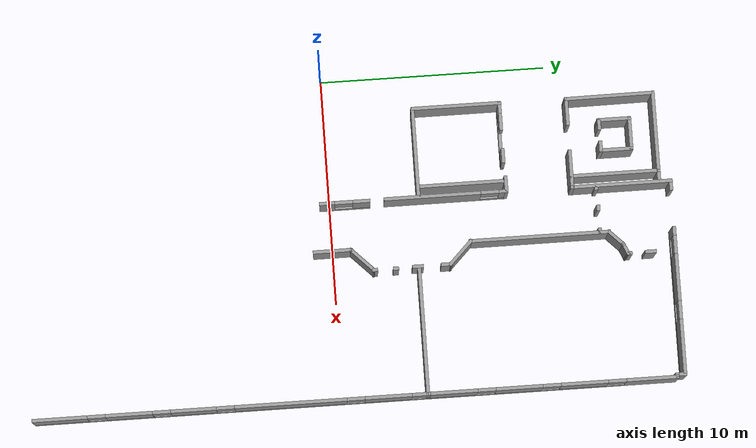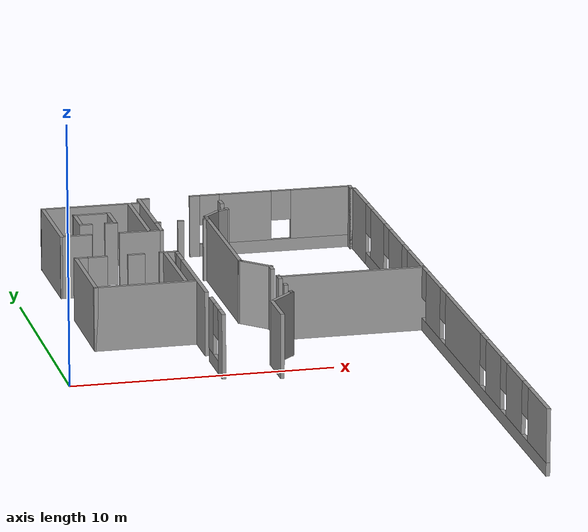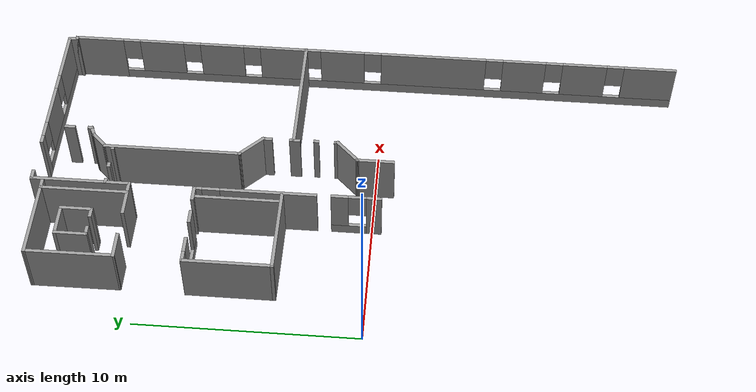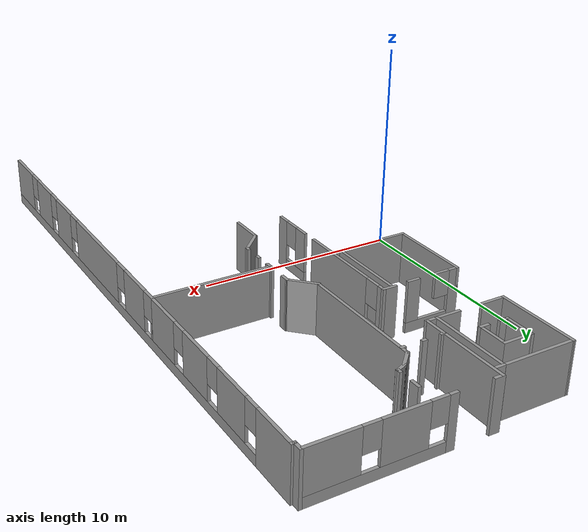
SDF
<sdf version="1.6">
 <model name="Parte_DX_(visione_alta_mappa)_CV1">
  <pose>8.09528 -0.682905 0 0 -0 0</pose>
  <link name="Wall_0">
   <collision name="Wall_0_Collision">
    <geometry><box><size>3.5 0.15 2.5</size></box></geometry>
    <pose>0 0 1.25 0 -0 0</pose>
   </collision>
   <visual name="Wall_0_Visual">
    <pose>0 0 1.25 0 -0 0</pose>
    <geometry><box><size>3.5 0.15 2.5</size></box></geometry>
    <material>
     <script><uri>file://media/materials/scripts/gazebo.material</uri><name>Gazebo/Grey</name></script>
     <ambient>1 1 1 1</ambient>
    </material>
   </visual>
   <pose>-4.6353 15.3082 0 0 -0 0</pose>
  </link>
  <link name="Wall_101">
   <collision name="Wall_101_Collision">
    <geometry><box><size>1.75 0.15 2.5</size></box></geometry>
    <pose>0 0 1.25 0 -0 0</pose>
   </collision>
   <visual name="Wall_101_Visual">
    <pose>0 0 1.25 0 -0 0</pose>
    <geometry><box><size>1.75 0.15 2.5</size></box></geometry>
    <material>
     <script><uri>file://media/materials/scripts/gazebo.material</uri><name>Gazebo/Grey</name></script>
     <ambient>1 1 1 1</ambient>
    </material>
   </visual>
   <pose>-0.253384 0.713118 0 0 0 -1.5708</pose>
  </link>
  <link name="Wall_117">
   <collision name="Wall_117_Collision">
    <geometry><box><size>0.15 0.15 2.5</size></box></geometry>
    <pose>0 0 1.25 0 -0 0</pose>
   </collision>
   <visual name="Wall_117_Visual">
    <pose>0 0 1.25 0 -0 0</pose>
    <geometry><box><size>0.15 0.15 2.5</size></box></geometry>
    <material>
     <script><uri>file://media/materials/scripts/gazebo.material</uri><name>Gazebo/Grey</name></script>
     <ambient>1 1 1 1</ambient>
    </material>
   </visual>
   <pose>-0.253384 1.51312 0 0 -0 0</pose>
  </link>
  <link name="Wall_119">
   <collision name="Wall_119_Collision">
    <geometry><box><size>0.25 0.15 2.5</size></box></geometry>
    <pose>0 0 1.25 0 -0 0</pose>
   </collision>
   <visual name="Wall_119_Visual">
    <pose>0 0 1.25 0 -0 0</pose>
    <geometry><box><size>0.25 0.15 2.5</size></box></geometry>
    <material>
     <script><uri>file://media/materials/scripts/gazebo.material</uri><name>Gazebo/Grey</name></script>
     <ambient>1 1 1 1</ambient>
    </material>
   </visual>
   <pose>0.70121 2.51771 0 0 -0 1.5708</pose>
  </link>
  <link name="Wall_123">
   <collision name="Wall_123_Collision">
    <geometry><box><size>1.5 0.15 2.5</size></box></geometry>
    <pose>0 0 1.25 0 -0 0</pose>
   </collision>
   <visual name="Wall_123_Visual">
    <pose>0 0 1.25 0 -0 0</pose>
    <geometry><box><size>1.5 0.15 2.5</size></box></geometry>
    <material>
     <script><uri>file://media/materials/scripts/gazebo.material</uri><name>Gazebo/Grey</name></script>
     <ambient>1 1 1 1</ambient>
    </material>
   </visual>
   <pose>0.223913 1.99042 0 0 -0 0.785398</pose>
  </link>
  <link name="Wall_125">
   <collision name="Wall_125_Collision">
    <geometry><box><size>0.25 0.15 2.5</size></box></geometry>
    <pose>0 0 1.25 0 -0 0</pose>
   </collision>
   <visual name="Wall_125_Visual">
    <pose>0 0 1.25 0 -0 0</pose>
    <geometry><box><size>0.25 0.15 2.5</size></box></geometry>
    <material>
     <script><uri>file://media/materials/scripts/gazebo.material</uri><name>Gazebo/Grey</name></script>
     <ambient>1 1 1 1</ambient>
    </material>
   </visual>
   <pose>0.700925 3.44587 0 0 0 -1.5708</pose>
  </link>
  <link name="Wall_127">
   <collision name="Wall_127_Collision">
    <geometry><box><size>0.5 0.15 2.5</size></box></geometry>
    <pose>0 0 1.25 0 -0 0</pose>
   </collision>
   <visual name="Wall_127_Visual">
    <pose>0 0 1.25 0 -0 0</pose>
    <geometry><box><size>0.5 0.15 2.5</size></box></geometry>
    <material>
     <script><uri>file://media/materials/scripts/gazebo.material</uri><name>Gazebo/Grey</name></script>
     <ambient>1 1 1 1</ambient>
    </material>
   </visual>
   <pose>0.681262 4.41709 0 0 0 -1.5708</pose>
  </link>
  <link name="Wall_130">
   <collision name="Wall_130_Collision">
    <geometry><box><size>5.75 0.15 2.5</size></box></geometry>
    <pose>0 0 1.25 0 -0 0</pose>
   </collision>
   <visual name="Wall_130_Visual">
    <pose>0 0 1.25 0 -0 0</pose>
    <geometry><box><size>5.75 0.15 2.5</size></box></geometry>
    <material>
     <script><uri>file://media/materials/scripts/gazebo.material</uri><name>Gazebo/Grey</name></script>
     <ambient>1 1 1 1</ambient>
    </material>
   </visual>
   <pose>3.51474 4.4692 0 0 -0 3.14159</pose>
  </link>
  <link name="Wall_132">
   <collision name="Wall_132_Collision">
    <geometry><box><size>0.25 0.15 2.5</size></box></geometry>
    <pose>0 0 1.25 0 -0 0</pose>
   </collision>
   <visual name="Wall_132_Visual">
    <pose>0 0 1.25 0 -0 0</pose>
    <geometry><box><size>0.25 0.15 2.5</size></box></geometry>
    <material>
     <script><uri>file://media/materials/scripts/gazebo.material</uri><name>Gazebo/Grey</name></script>
     <ambient>1 1 1 1</ambient>
    </material>
   </visual>
   <pose>-1.36627 12.5347 0 0 -0 0</pose>
  </link>
  <link name="Wall_134">
   <collision name="Wall_134_Collision">
    <geometry><box><size>0.25 0.15 2.5</size></box></geometry>
    <pose>0 0 1.25 0 -0 0</pose>
   </collision>
   <visual name="Wall_134_Visual">
    <pose>0 0 1.25 0 -0 0</pose>
    <geometry><box><size>0.25 0.15 2.5</size></box></geometry>
    <material>
     <script><uri>file://media/materials/scripts/gazebo.material</uri><name>Gazebo/Grey</name></script>
     <ambient>1 1 1 1</ambient>
    </material>
   </visual>
   <pose>-0.351158 12.5347 0 0 -0 3.14159</pose>
  </link>
  <link name="Wall_136">
   <collision name="Wall_136_Collision">
    <geometry><box><size>0.25 0.15 2.5</size></box></geometry>
    <pose>0 0 1.25 0 -0 0</pose>
   </collision>
   <visual name="Wall_136_Visual">
    <pose>0 0 1.25 0 -0 0</pose>
    <geometry><box><size>0.25 0.15 2.5</size></box></geometry>
    <material>
     <script><uri>file://media/materials/scripts/gazebo.material</uri><name>Gazebo/Grey</name></script>
     <ambient>1 1 1 1</ambient>
    </material>
   </visual>
   <pose>-2.28438 12.5087 0 0 -0 0</pose>
  </link>
  <link name="Wall_176">
   <pose>-2.37395 1.38843 0 0 -0 1.5708</pose>
   <visual name="Wall_176_Visual_0">
    <pose>-0.785504 0 1.25 0 -0 0</pose>
    <geometry><box><size>0.678993 0.15 2.5</size></box></geometry>
    <material>
     <script><uri>file://media/materials/scripts/gazebo.material</uri><name>Gazebo/Grey</name></script>
     <ambient>1 1 1 1</ambient>
    </material>
   </visual>
   <collision name="Wall_176_Collision_0">
    <geometry><box><size>0.678993 0.15 2.5</size></box></geometry>
    <pose>-0.785504 0 1.25 0 -0 0</pose>
   </collision>
   <visual name="Wall_176_Visual_1">
    <pose>0.339496 0 0.25 0 -0 0</pose>
    <geometry><box><size>1.57101 0.15 0.5</size></box></geometry>
    <material>
     <script><uri>file://media/materials/scripts/gazebo.material</uri><name>Gazebo/Grey</name></script>
     <ambient>1 1 1 1</ambient>
    </material>
   </visual>
   <collision name="Wall_176_Collision_1">
    <geometry><box><size>1.57101 0.15 0.5</size></box></geometry>
    <pose>0.339496 0 0.25 0 -0 0</pose>
   </collision>
   <visual name="Wall_176_Visual_2">
    <pose>0.739496 0 1.5 0 -0 0</pose>
    <geometry><box><size>0.771007 0.15 2</size></box></geometry>
    <material>
     <script><uri>file://media/materials/scripts/gazebo.material</uri><name>Gazebo/Grey</name></script>
     <ambient>1 1 1 1</ambient>
    </material>
   </visual>
   <collision name="Wall_176_Collision_2">
    <geometry><box><size>0.771007 0.15 2</size></box></geometry>
    <pose>0.739496 0 1.5 0 -0 0</pose>
   </collision>
   <visual name="Wall_176_Visual_3">
    <pose>-0.046007 0 1.9 0 -0 0</pose>
    <geometry><box><size>0.8 0.15 1.2</size></box></geometry>
    <material>
     <script><uri>file://media/materials/scripts/gazebo.material</uri><name>Gazebo/Grey</name></script>
     <ambient>1 1 1 1</ambient>
    </material>
   </visual>
   <collision name="Wall_176_Collision_3">
    <geometry><box><size>0.8 0.15 1.2</size></box></geometry>
    <pose>-0.046007 0 1.9 0 -0 0</pose>
   </collision>
  </link>
  <link name="Wall_178">
   <pose>-2.38898 5.87055 0 0 -0 1.5708</pose>
   <visual name="Wall_178_Visual_0">
    <pose>-0.604104 0 1.25 0 -0 0</pose>
    <geometry><box><size>4.29179 0.15 2.5</size></box></geometry>
    <material>
     <script><uri>file://media/materials/scripts/gazebo.material</uri><name>Gazebo/Grey</name></script>
     <ambient>1 1 1 1</ambient>
    </material>
   </visual>
   <collision name="Wall_178_Collision_0">
    <geometry><box><size>4.29179 0.15 2.5</size></box></geometry>
    <pose>-0.604104 0 1.25 0 -0 0</pose>
   </collision>
   <visual name="Wall_178_Visual_1">
    <pose>2.1459 0 0.25 0 -0 0</pose>
    <geometry><box><size>1.20821 0.15 0.5</size></box></geometry>
    <material>
     <script><uri>file://media/materials/scripts/gazebo.material</uri><name>Gazebo/Grey</name></script>
     <ambient>1 1 1 1</ambient>
    </material>
   </visual>
   <collision name="Wall_178_Collision_1">
    <geometry><box><size>1.20821 0.15 0.5</size></box></geometry>
    <pose>2.1459 0 0.25 0 -0 0</pose>
   </collision>
   <visual name="Wall_178_Visual_2">
    <pose>2.5459 0 1.5 0 -0 0</pose>
    <geometry><box><size>0.408208 0.15 2</size></box></geometry>
    <material>
     <script><uri>file://media/materials/scripts/gazebo.material</uri><name>Gazebo/Grey</name></script>
     <ambient>1 1 1 1</ambient>
    </material>
   </visual>
   <collision name="Wall_178_Collision_2">
    <geometry><box><size>0.408208 0.15 2</size></box></geometry>
    <pose>2.5459 0 1.5 0 -0 0</pose>
   </collision>
   <visual name="Wall_178_Visual_3">
    <pose>1.94179 0 1.9 0 -0 0</pose>
    <geometry><box><size>0.8 0.15 1.2</size></box></geometry>
    <material>
     <script><uri>file://media/materials/scripts/gazebo.material</uri><name>Gazebo/Grey</name></script>
     <ambient>1 1 1 1</ambient>
    </material>
   </visual>
   <collision name="Wall_178_Collision_3">
    <geometry><box><size>0.8 0.15 1.2</size></box></geometry>
    <pose>1.94179 0 1.9 0 -0 0</pose>
   </collision>
  </link>
  <link name="Wall_180">
   <collision name="Wall_180_Collision">
    <geometry><box><size>0.75 0.15 2.5</size></box></geometry>
    <pose>0 0 1.25 0 -0 0</pose>
   </collision>
   <visual name="Wall_180_Visual">
    <pose>0 0 1.25 0 -0 0</pose>
    <geometry><box><size>0.75 0.15 2.5</size></box></geometry>
    <material>
     <script><uri>file://media/materials/scripts/gazebo.material</uri><name>Gazebo/Grey</name></script>
     <ambient>1 1 1 1</ambient>
    </material>
   </visual>
   <pose>-2.68898 8.54555 0 0 -0 3.14159</pose>
  </link>
  <link name="Wall_183">
   <collision name="Wall_183_Collision">
    <geometry><box><size>4 0.15 2.5</size></box></geometry>
    <pose>0 0 1.25 0 -0 0</pose>
   </collision>
   <visual name="Wall_183_Visual">
    <pose>0 0 1.25 0 -0 0</pose>
    <geometry><box><size>4 0.15 2.5</size></box></geometry>
    <material>
     <script><uri>file://media/materials/scripts/gazebo.material</uri><name>Gazebo/Grey</name></script>
     <ambient>1 1 1 1</ambient>
    </material>
   </visual>
   <pose>-4.39285 4.65738 0 0 -0 3.14159</pose>
  </link>
  <link name="Wall_185">
   <collision name="Wall_185_Collision">
    <geometry><box><size>4 0.15 2.5</size></box></geometry>
    <pose>0 0 1.25 0 -0 0</pose>
   </collision>
   <visual name="Wall_185_Visual">
    <pose>0 0 1.25 0 -0 0</pose>
    <geometry><box><size>4 0.15 2.5</size></box></geometry>
    <material>
     <script><uri>file://media/materials/scripts/gazebo.material</uri><name>Gazebo/Grey</name></script>
     <ambient>1 1 1 1</ambient>
    </material>
   </visual>
   <pose>-6.31785 6.58238 0 0 -0 1.5708</pose>
  </link>
  <link name="Wall_187">
   <pose>-5.01785 8.50738 0 0 -0 0</pose>
   <visual name="Wall_187_Visual_0">
    <pose>-1.10572 0 1.25 0 -0 0</pose>
    <geometry><box><size>0.538566 0.15 2.5</size></box></geometry>
    <material>
     <script><uri>file://media/materials/scripts/gazebo.material</uri><name>Gazebo/Grey</name></script>
     <ambient>1 1 1 1</ambient>
    </material>
   </visual>
   <collision name="Wall_187_Collision_0">
    <geometry><box><size>0.538566 0.15 2.5</size></box></geometry>
    <pose>-1.10572 0 1.25 0 -0 0</pose>
   </collision>
   <visual name="Wall_187_Visual_1">
    <pose>0.269283 0 0.25 0 -0 0</pose>
    <geometry><box><size>2.21143 0.15 0.5</size></box></geometry>
    <material>
     <script><uri>file://media/materials/scripts/gazebo.material</uri><name>Gazebo/Grey</name></script>
     <ambient>1 1 1 1</ambient>
    </material>
   </visual>
   <collision name="Wall_187_Collision_1">
    <geometry><box><size>2.21143 0.15 0.5</size></box></geometry>
    <pose>0.269283 0 0.25 0 -0 0</pose>
   </collision>
   <visual name="Wall_187_Visual_2">
    <pose>1.04664 0 1.5 0 -0 0</pose>
    <geometry><box><size>0.656719 0.15 2</size></box></geometry>
    <material>
     <script><uri>file://media/materials/scripts/gazebo.material</uri><name>Gazebo/Grey</name></script>
     <ambient>1 1 1 1</ambient>
    </material>
   </visual>
   <collision name="Wall_187_Collision_2">
    <geometry><box><size>0.656719 0.15 2</size></box></geometry>
    <pose>1.04664 0 1.5 0 -0 0</pose>
   </collision>
   <visual name="Wall_187_Visual_3">
    <pose>-0.459077 0 1.9 0 -0 0</pose>
    <geometry><box><size>0.754714 0.15 1.2</size></box></geometry>
    <material>
     <script><uri>file://media/materials/scripts/gazebo.material</uri><name>Gazebo/Grey</name></script>
     <ambient>1 1 1 1</ambient>
    </material>
   </visual>
   <collision name="Wall_187_Collision_3">
    <geometry><box><size>0.754714 0.15 1.2</size></box></geometry>
    <pose>-0.459077 0 1.9 0 -0 0</pose>
   </collision>
  </link>
  <link name="Wall_189">
   <collision name="Wall_189_Collision">
    <geometry><box><size>3.75 0.15 2.5</size></box></geometry>
    <pose>0 0 1.25 0 -0 0</pose>
   </collision>
   <visual name="Wall_189_Visual">
    <pose>0 0 1.25 0 -0 0</pose>
    <geometry><box><size>3.75 0.15 2.5</size></box></geometry>
    <material>
     <script><uri>file://media/materials/scripts/gazebo.material</uri><name>Gazebo/Grey</name></script>
     <ambient>1 1 1 1</ambient>
    </material>
   </visual>
   <pose>-2.84357 6.58911 0 0 0 -1.5708</pose>
  </link>
  <link name="Wall_2">
   <collision name="Wall_2_Collision">
    <geometry><box><size>1.25 0.15 2.5</size></box></geometry>
    <pose>0 0 1.25 0 -0 0</pose>
   </collision>
   <visual name="Wall_2_Visual">
    <pose>0 0 1.25 0 -0 0</pose>
    <geometry><box><size>1.25 0.15 2.5</size></box></geometry>
    <material>
     <script><uri>file://media/materials/scripts/gazebo.material</uri><name>Gazebo/Grey</name></script>
     <ambient>1 1 1 1</ambient>
    </material>
   </visual>
   <pose>-5.73743 11.466 0 0 -0 0</pose>
  </link>
  <link name="Wall_22">
   <pose>2.9365 15.8002 0 0 -0 0</pose>
   <visual name="Wall_22_Visual_0">
    <pose>-3.04792 0 1.25 0 -0 0</pose>
    <geometry><box><size>0.404156 0.15 2.5</size></box></geometry>
    <material>
     <script><uri>file://media/materials/scripts/gazebo.material</uri><name>Gazebo/Grey</name></script>
     <ambient>1 1 1 1</ambient>
    </material>
   </visual>
   <collision name="Wall_22_Collision_0">
    <geometry><box><size>0.404156 0.15 2.5</size></box></geometry>
    <pose>-3.04792 0 1.25 0 -0 0</pose>
   </collision>
   <visual name="Wall_22_Visual_1">
    <pose>0.202078 0 0.25 0 -0 0</pose>
    <geometry><box><size>6.09584 0.15 0.5</size></box></geometry>
    <material>
     <script><uri>file://media/materials/scripts/gazebo.material</uri><name>Gazebo/Grey</name></script>
     <ambient>1 1 1 1</ambient>
    </material>
   </visual>
   <collision name="Wall_22_Collision_1">
    <geometry><box><size>6.09584 0.15 0.5</size></box></geometry>
    <pose>0.202078 0 0.25 0 -0 0</pose>
   </collision>
   <visual name="Wall_22_Visual_2">
    <pose>-0.994727 0 1.5 0 -0 0</pose>
    <geometry><box><size>2.10223 0.15 2</size></box></geometry>
    <material>
     <script><uri>file://media/materials/scripts/gazebo.material</uri><name>Gazebo/Grey</name></script>
     <ambient>1 1 1 1</ambient>
    </material>
   </visual>
   <collision name="Wall_22_Collision_2">
    <geometry><box><size>2.10223 0.15 2</size></box></geometry>
    <pose>-0.994727 0 1.5 0 -0 0</pose>
   </collision>
   <visual name="Wall_22_Visual_3">
    <pose>2.0532 0 1.5 0 -0 0</pose>
    <geometry><box><size>2.39361 0.15 2</size></box></geometry>
    <material>
     <script><uri>file://media/materials/scripts/gazebo.material</uri><name>Gazebo/Grey</name></script>
     <ambient>1 1 1 1</ambient>
    </material>
   </visual>
   <collision name="Wall_22_Collision_3">
    <geometry><box><size>2.39361 0.15 2</size></box></geometry>
    <pose>2.0532 0 1.5 0 -0 0</pose>
   </collision>
   <visual name="Wall_22_Visual_4">
    <pose>-2.44584 0 1.9 0 -0 0</pose>
    <geometry><box><size>0.8 0.15 1.2</size></box></geometry>
    <material>
     <script><uri>file://media/materials/scripts/gazebo.material</uri><name>Gazebo/Grey</name></script>
     <ambient>1 1 1 1</ambient>
    </material>
   </visual>
   <collision name="Wall_22_Collision_4">
    <geometry><box><size>0.8 0.15 1.2</size></box></geometry>
    <pose>-2.44584 0 1.9 0 -0 0</pose>
   </collision>
   <visual name="Wall_22_Visual_5">
    <pose>0.45639 0 1.9 0 -0 0</pose>
    <geometry><box><size>0.8 0.15 1.2</size></box></geometry>
    <material>
     <script><uri>file://media/materials/scripts/gazebo.material</uri><name>Gazebo/Grey</name></script>
     <ambient>1 1 1 1</ambient>
    </material>
   </visual>
   <collision name="Wall_22_Collision_5">
    <geometry><box><size>0.8 0.15 1.2</size></box></geometry>
    <pose>0.45639 0 1.9 0 -0 0</pose>
   </collision>
  </link>
  <link name="Wall_25">
   <collision name="Wall_25_Collision">
    <geometry><box><size>0.25 0.15 2.5</size></box></geometry>
    <pose>0 0 1.25 0 -0 0</pose>
   </collision>
   <visual name="Wall_25_Visual">
    <pose>0 0 1.25 0 -0 0</pose>
    <geometry><box><size>0.25 0.15 2.5</size></box></geometry>
    <material>
     <script><uri>file://media/materials/scripts/gazebo.material</uri><name>Gazebo/Grey</name></script>
     <ambient>1 1 1 1</ambient>
    </material>
   </visual>
   <pose>6.26785 15.4522 0 0 -0 3.14159</pose>
  </link>
  <link name="Wall_27">
   <collision name="Wall_27_Collision">
    <geometry><box><size>0.5 0.15 2.5</size></box></geometry>
    <pose>0 0 1.25 0 -0 0</pose>
   </collision>
   <visual name="Wall_27_Visual">
    <pose>0 0 1.25 0 -0 0</pose>
    <geometry><box><size>0.5 0.15 2.5</size></box></geometry>
    <material>
     <script><uri>file://media/materials/scripts/gazebo.material</uri><name>Gazebo/Grey</name></script>
     <ambient>1 1 1 1</ambient>
    </material>
   </visual>
   <pose>6.21785 15.6272 0 0 -0 1.5708</pose>
  </link>
  <link name="Wall_33">
   <collision name="Wall_33_Collision">
    <geometry><box><size>0.5 0.15 2.5</size></box></geometry>
    <pose>0 0 1.25 0 -0 0</pose>
   </collision>
   <visual name="Wall_33_Visual">
    <pose>0 0 1.25 0 -0 0</pose>
    <geometry><box><size>0.5 0.15 2.5</size></box></geometry>
    <material>
     <script><uri>file://media/materials/scripts/gazebo.material</uri><name>Gazebo/Grey</name></script>
     <ambient>1 1 1 1</ambient>
    </material>
   </visual>
   <pose>-2.67047 15.3073 0 0 -0 3.14159</pose>
  </link>
  <link name="Wall_39">
   <collision name="Wall_39_Collision">
    <geometry><box><size>0.5 0.15 2.5</size></box></geometry>
    <pose>0 0 1.25 0 -0 0</pose>
   </collision>
   <visual name="Wall_39_Visual">
    <pose>0 0 1.25 0 -0 0</pose>
    <geometry><box><size>0.5 0.15 2.5</size></box></geometry>
    <material>
     <script><uri>file://media/materials/scripts/gazebo.material</uri><name>Gazebo/Grey</name></script>
     <ambient>1 1 1 1</ambient>
    </material>
   </visual>
   <pose>-2.17837 15.8078 0 0 -0 0</pose>
  </link>
  <link name="Wall_4">
   <collision name="Wall_4_Collision">
    <geometry><box><size>1.75 0.15 2.5</size></box></geometry>
    <pose>0 0 1.25 0 -0 0</pose>
   </collision>
   <visual name="Wall_4_Visual">
    <pose>0 0 1.25 0 -0 0</pose>
    <geometry><box><size>1.75 0.15 2.5</size></box></geometry>
    <material>
     <script><uri>file://media/materials/scripts/gazebo.material</uri><name>Gazebo/Grey</name></script>
     <ambient>1 1 1 1</ambient>
    </material>
   </visual>
   <pose>-3.15533 11.4584 0 0 -0 0</pose>
  </link>
  <link name="Wall_43">
   <collision name="Wall_43_Collision">
    <geometry><box><size>3.99225 0.15 2.5</size></box></geometry>
    <pose>0 0 1.25 0 -0 0</pose>
   </collision>
   <visual name="Wall_43_Visual">
    <pose>0 0 1.25 0 -0 0</pose>
    <geometry><box><size>3.99225 0.15 2.5</size></box></geometry>
    <material>
     <script><uri>file://media/materials/scripts/gazebo.material</uri><name>Gazebo/Grey</name></script>
     <ambient>1 1 1 1</ambient>
    </material>
   </visual>
   <pose>-6.29886 13.3871 0 0 0 -1.56484</pose>
  </link>
  <link name="Wall_45">
   <collision name="Wall_45_Collision">
    <geometry><box><size>4.5 0.15 2.5</size></box></geometry>
    <pose>0 0 1.25 0 -0 0</pose>
   </collision>
   <visual name="Wall_45_Visual">
    <pose>0 0 1.25 0 -0 0</pose>
    <geometry><box><size>4.5 0.15 2.5</size></box></geometry>
    <material>
     <script><uri>file://media/materials/scripts/gazebo.material</uri><name>Gazebo/Grey</name></script>
     <ambient>1 1 1 1</ambient>
    </material>
   </visual>
   <pose>-2.35621 13.6319 0 0 0 -1.5708</pose>
  </link>
  <link name="Wall_57">
   <collision name="Wall_57_Collision">
    <geometry><box><size>1.5 0.15 2.5</size></box></geometry>
    <pose>0 0 1.25 0 -0 0</pose>
   </collision>
   <visual name="Wall_57_Visual">
    <pose>0 0 1.25 0 -0 0</pose>
    <geometry><box><size>1.5 0.15 2.5</size></box></geometry>
    <material>
     <script><uri>file://media/materials/scripts/gazebo.material</uri><name>Gazebo/Grey</name></script>
     <ambient>1 1 1 1</ambient>
    </material>
   </visual>
   <pose>-4.57569 14.1901 0 0 -0 0</pose>
  </link>
  <link name="Wall_60">
   <collision name="Wall_60_Collision">
    <geometry><box><size>1.5 0.15 2.5</size></box></geometry>
    <pose>0 0 1.25 0 -0 0</pose>
   </collision>
   <visual name="Wall_60_Visual">
    <pose>0 0 1.25 0 -0 0</pose>
    <geometry><box><size>1.5 0.15 2.5</size></box></geometry>
    <material>
     <script><uri>file://media/materials/scripts/gazebo.material</uri><name>Gazebo/Grey</name></script>
     <ambient>1 1 1 1</ambient>
    </material>
   </visual>
   <pose>-3.90069 13.5151 0 0 0 -1.5708</pose>
  </link>
  <link name="Wall_62">
   <collision name="Wall_62_Collision">
    <geometry><box><size>1.5 0.15 2.5</size></box></geometry>
    <pose>0 0 1.25 0 -0 0</pose>
   </collision>
   <visual name="Wall_62_Visual">
    <pose>0 0 1.25 0 -0 0</pose>
    <geometry><box><size>1.5 0.15 2.5</size></box></geometry>
    <material>
     <script><uri>file://media/materials/scripts/gazebo.material</uri><name>Gazebo/Grey</name></script>
     <ambient>1 1 1 1</ambient>
    </material>
   </visual>
   <pose>-5.25069 13.5151 0 0 0 -1.5708</pose>
  </link>
  <link name="Wall_64">
   <collision name="Wall_64_Collision">
    <geometry><box><size>0.5 0.15 2.5</size></box></geometry>
    <pose>0 0 1.25 0 -0 0</pose>
   </collision>
   <visual name="Wall_64_Visual">
    <pose>0 0 1.25 0 -0 0</pose>
    <geometry><box><size>0.5 0.15 2.5</size></box></geometry>
    <material>
     <script><uri>file://media/materials/scripts/gazebo.material</uri><name>Gazebo/Grey</name></script>
     <ambient>1 1 1 1</ambient>
    </material>
   </visual>
   <pose>-5.07569 12.8401 0 0 -0 0</pose>
  </link>
  <link name="Wall_66">
   <collision name="Wall_66_Collision">
    <geometry><box><size>0.5 0.15 2.5</size></box></geometry>
    <pose>0 0 1.25 0 -0 0</pose>
   </collision>
   <visual name="Wall_66_Visual">
    <pose>0 0 1.25 0 -0 0</pose>
    <geometry><box><size>0.5 0.15 2.5</size></box></geometry>
    <material>
     <script><uri>file://media/materials/scripts/gazebo.material</uri><name>Gazebo/Grey</name></script>
     <ambient>1 1 1 1</ambient>
    </material>
   </visual>
   <pose>-4.07569 12.8401 0 0 -0 3.14159</pose>
  </link>
  <link name="Wall_69">
   <pose>6.31785 1.27717 0 0 0 -1.5708</pose>
   <visual name="Wall_69_Visual_0">
    <pose>-13.0951 0 1.25 0 -0 0</pose>
    <geometry><box><size>2.30974 0.15 2.5</size></box></geometry>
    <material>
     <script><uri>file://media/materials/scripts/gazebo.material</uri><name>Gazebo/Grey</name></script>
     <ambient>1 1 1 1</ambient>
    </material>
   </visual>
   <collision name="Wall_69_Collision_0">
    <geometry><box><size>2.30974 0.15 2.5</size></box></geometry>
    <pose>-13.0951 0 1.25 0 -0 0</pose>
   </collision>
   <visual name="Wall_69_Visual_1">
    <pose>1.15487 0 0.25 0 -0 0</pose>
    <geometry><box><size>26.1903 0.15 0.5</size></box></geometry>
    <material>
     <script><uri>file://media/materials/scripts/gazebo.material</uri><name>Gazebo/Grey</name></script>
     <ambient>1 1 1 1</ambient>
    </material>
   </visual>
   <collision name="Wall_69_Collision_1">
    <geometry><box><size>26.1903 0.15 0.5</size></box></geometry>
    <pose>1.15487 0 0.25 0 -0 0</pose>
   </collision>
   <visual name="Wall_69_Visual_2">
    <pose>-10.0967 0 1.5 0 -0 0</pose>
    <geometry><box><size>2.0872 0.15 2</size></box></geometry>
    <material>
     <script><uri>file://media/materials/scripts/gazebo.material</uri><name>Gazebo/Grey</name></script>
     <ambient>1 1 1 1</ambient>
    </material>
   </visual>
   <collision name="Wall_69_Collision_2">
    <geometry><box><size>2.0872 0.15 2</size></box></geometry>
    <pose>-10.0967 0 1.5 0 -0 0</pose>
   </collision>
   <visual name="Wall_69_Visual_3">
    <pose>-7.21698 0 1.5 0 -0 0</pose>
    <geometry><box><size>2.07216 0.15 2</size></box></geometry>
    <material>
     <script><uri>file://media/materials/scripts/gazebo.material</uri><name>Gazebo/Grey</name></script>
     <ambient>1 1 1 1</ambient>
    </material>
   </visual>
   <collision name="Wall_69_Collision_3">
    <geometry><box><size>2.07216 0.15 2</size></box></geometry>
    <pose>-7.21698 0 1.5 0 -0 0</pose>
   </collision>
   <visual name="Wall_69_Visual_4">
    <pose>-4.3373 0 1.5 0 -0 0</pose>
    <geometry><box><size>2.0872 0.15 2</size></box></geometry>
    <material>
     <script><uri>file://media/materials/scripts/gazebo.material</uri><name>Gazebo/Grey</name></script>
     <ambient>1 1 1 1</ambient>
    </material>
   </visual>
   <collision name="Wall_69_Collision_4">
    <geometry><box><size>2.0872 0.15 2</size></box></geometry>
    <pose>-4.3373 0 1.5 0 -0 0</pose>
   </collision>
   <visual name="Wall_69_Visual_5">
    <pose>-1.45762 0 1.5 0 -0 0</pose>
    <geometry><box><size>2.07216 0.15 2</size></box></geometry>
    <material>
     <script><uri>file://media/materials/scripts/gazebo.material</uri><name>Gazebo/Grey</name></script>
     <ambient>1 1 1 1</ambient>
    </material>
   </visual>
   <collision name="Wall_69_Collision_5">
    <geometry><box><size>2.07216 0.15 2</size></box></geometry>
    <pose>-1.45762 0 1.5 0 -0 0</pose>
   </collision>
   <visual name="Wall_69_Visual_6">
    <pose>2.85813 0 1.5 0 -0 0</pose>
    <geometry><box><size>4.95936 0.15 2</size></box></geometry>
    <material>
     <script><uri>file://media/materials/scripts/gazebo.material</uri><name>Gazebo/Grey</name></script>
     <ambient>1 1 1 1</ambient>
    </material>
   </visual>
   <collision name="Wall_69_Collision_6">
    <geometry><box><size>4.95936 0.15 2</size></box></geometry>
    <pose>2.85813 0 1.5 0 -0 0</pose>
   </collision>
   <visual name="Wall_69_Visual_7">
    <pose>7.14382 0 1.5 0 -0 0</pose>
    <geometry><box><size>2.01201 0.15 2</size></box></geometry>
    <material>
     <script><uri>file://media/materials/scripts/gazebo.material</uri><name>Gazebo/Grey</name></script>
     <ambient>1 1 1 1</ambient>
    </material>
   </visual>
   <collision name="Wall_69_Collision_7">
    <geometry><box><size>2.01201 0.15 2</size></box></geometry>
    <pose>7.14382 0 1.5 0 -0 0</pose>
   </collision>
   <visual name="Wall_69_Visual_8">
    <pose>9.9859 0 1.5 0 -0 0</pose>
    <geometry><box><size>2.07216 0.15 2</size></box></geometry>
    <material>
     <script><uri>file://media/materials/scripts/gazebo.material</uri><name>Gazebo/Grey</name></script>
     <ambient>1 1 1 1</ambient>
    </material>
   </visual>
   <collision name="Wall_69_Collision_8">
    <geometry><box><size>2.07216 0.15 2</size></box></geometry>
    <pose>9.9859 0 1.5 0 -0 0</pose>
   </collision>
   <visual name="Wall_69_Visual_9">
    <pose>13.036 0 1.5 0 -0 0</pose>
    <geometry><box><size>2.42802 0.15 2</size></box></geometry>
    <material>
     <script><uri>file://media/materials/scripts/gazebo.material</uri><name>Gazebo/Grey</name></script>
     <ambient>1 1 1 1</ambient>
    </material>
   </visual>
   <collision name="Wall_69_Collision_9">
    <geometry><box><size>2.42802 0.15 2</size></box></geometry>
    <pose>13.036 0 1.5 0 -0 0</pose>
   </collision>
   <visual name="Wall_69_Visual_10">
    <pose>-11.5403 0 1.9 0 -0 0</pose>
    <geometry><box><size>0.8 0.15 1.2</size></box></geometry>
    <material>
     <script><uri>file://media/materials/scripts/gazebo.material</uri><name>Gazebo/Grey</name></script>
     <ambient>1 1 1 1</ambient>
    </material>
   </visual>
   <collision name="Wall_69_Collision_10">
    <geometry><box><size>0.8 0.15 1.2</size></box></geometry>
    <pose>-11.5403 0 1.9 0 -0 0</pose>
   </collision>
   <visual name="Wall_69_Visual_11">
    <pose>-8.65306 0 1.9 0 -0 0</pose>
    <geometry><box><size>0.8 0.15 1.2</size></box></geometry>
    <material>
     <script><uri>file://media/materials/scripts/gazebo.material</uri><name>Gazebo/Grey</name></script>
     <ambient>1 1 1 1</ambient>
    </material>
   </visual>
   <collision name="Wall_69_Collision_11">
    <geometry><box><size>0.8 0.15 1.2</size></box></geometry>
    <pose>-8.65306 0 1.9 0 -0 0</pose>
   </collision>
   <visual name="Wall_69_Visual_12">
    <pose>-5.7809 0 1.9 0 -0 0</pose>
    <geometry><box><size>0.8 0.15 1.2</size></box></geometry>
    <material>
     <script><uri>file://media/materials/scripts/gazebo.material</uri><name>Gazebo/Grey</name></script>
     <ambient>1 1 1 1</ambient>
    </material>
   </visual>
   <collision name="Wall_69_Collision_12">
    <geometry><box><size>0.8 0.15 1.2</size></box></geometry>
    <pose>-5.7809 0 1.9 0 -0 0</pose>
   </collision>
   <visual name="Wall_69_Visual_13">
    <pose>-2.8937 0 1.9 0 -0 0</pose>
    <geometry><box><size>0.8 0.15 1.2</size></box></geometry>
    <material>
     <script><uri>file://media/materials/scripts/gazebo.material</uri><name>Gazebo/Grey</name></script>
     <ambient>1 1 1 1</ambient>
    </material>
   </visual>
   <collision name="Wall_69_Collision_13">
    <geometry><box><size>0.8 0.15 1.2</size></box></geometry>
    <pose>-2.8937 0 1.9 0 -0 0</pose>
   </collision>
   <visual name="Wall_69_Visual_14">
    <pose>-0.021545 0 1.9 0 -0 0</pose>
    <geometry><box><size>0.8 0.15 1.2</size></box></geometry>
    <material>
     <script><uri>file://media/materials/scripts/gazebo.material</uri><name>Gazebo/Grey</name></script>
     <ambient>1 1 1 1</ambient>
    </material>
   </visual>
   <collision name="Wall_69_Collision_14">
    <geometry><box><size>0.8 0.15 1.2</size></box></geometry>
    <pose>-0.021545 0 1.9 0 -0 0</pose>
   </collision>
   <visual name="Wall_69_Visual_15">
    <pose>5.73781 0 1.9 0 -0 0</pose>
    <geometry><box><size>0.8 0.15 1.2</size></box></geometry>
    <material>
     <script><uri>file://media/materials/scripts/gazebo.material</uri><name>Gazebo/Grey</name></script>
     <ambient>1 1 1 1</ambient>
    </material>
   </visual>
   <collision name="Wall_69_Collision_15">
    <geometry><box><size>0.8 0.15 1.2</size></box></geometry>
    <pose>5.73781 0 1.9 0 -0 0</pose>
   </collision>
   <visual name="Wall_69_Visual_16">
    <pose>8.54982 0 1.9 0 -0 0</pose>
    <geometry><box><size>0.8 0.15 1.2</size></box></geometry>
    <material>
     <script><uri>file://media/materials/scripts/gazebo.material</uri><name>Gazebo/Grey</name></script>
     <ambient>1 1 1 1</ambient>
    </material>
   </visual>
   <collision name="Wall_69_Collision_16">
    <geometry><box><size>0.8 0.15 1.2</size></box></geometry>
    <pose>8.54982 0 1.9 0 -0 0</pose>
   </collision>
   <visual name="Wall_69_Visual_17">
    <pose>11.422 0 1.9 0 -0 0</pose>
    <geometry><box><size>0.8 0.15 1.2</size></box></geometry>
    <material>
     <script><uri>file://media/materials/scripts/gazebo.material</uri><name>Gazebo/Grey</name></script>
     <ambient>1 1 1 1</ambient>
    </material>
   </visual>
   <collision name="Wall_69_Collision_17">
    <geometry><box><size>0.8 0.15 1.2</size></box></geometry>
    <pose>11.422 0 1.9 0 -0 0</pose>
   </collision>
  </link>
  <link name="Wall_7">
   <collision name="Wall_7_Collision">
    <geometry><box><size>3.98011 0.15 2.5</size></box></geometry>
    <pose>0 0 1.25 0 -0 0</pose>
   </collision>
   <visual name="Wall_7_Visual">
    <pose>0 0 1.25 0 -0 0</pose>
    <geometry><box><size>3.98011 0.15 2.5</size></box></geometry>
    <material>
     <script><uri>file://media/materials/scripts/gazebo.material</uri><name>Gazebo/Grey</name></script>
     <ambient>1 1 1 1</ambient>
    </material>
   </visual>
   <pose>-2.84547 13.3872 0 0 0 -1.5708</pose>
  </link>
  <link name="Wall_81">
   <collision name="Wall_81_Collision">
    <geometry><box><size>0.5 0.15 2.5</size></box></geometry>
    <pose>0 0 1.25 0 -0 0</pose>
   </collision>
   <visual name="Wall_81_Visual">
    <pose>0 0 1.25 0 -0 0</pose>
    <geometry><box><size>0.5 0.15 2.5</size></box></geometry>
    <material>
     <script><uri>file://media/materials/scripts/gazebo.material</uri><name>Gazebo/Grey</name></script>
     <ambient>1 1 1 1</ambient>
    </material>
   </visual>
   <pose>0.724497 14.7006 0 0 0 -1.5708</pose>
  </link>
  <link name="Wall_83">
   <collision name="Wall_83_Collision">
    <geometry><box><size>0.25 0.15 2.5</size></box></geometry>
    <pose>0 0 1.25 0 -0 0</pose>
   </collision>
   <visual name="Wall_83_Visual">
    <pose>0 0 1.25 0 -0 0</pose>
    <geometry><box><size>0.25 0.15 2.5</size></box></geometry>
    <material>
     <script><uri>file://media/materials/scripts/gazebo.material</uri><name>Gazebo/Grey</name></script>
     <ambient>1 1 1 1</ambient>
    </material>
   </visual>
   <pose>0.735648 13.7547 0 0 -0 1.5708</pose>
  </link>
  <link name="Wall_85">
   <collision name="Wall_85_Collision">
    <geometry><box><size>1 0.15 2.5</size></box></geometry>
    <pose>0 0 1.25 0 -0 0</pose>
   </collision>
   <visual name="Wall_85_Visual">
    <pose>0 0 1.25 0 -0 0</pose>
    <geometry><box><size>1 0.15 2.5</size></box></geometry>
    <material>
     <script><uri>file://media/materials/scripts/gazebo.material</uri><name>Gazebo/Grey</name></script>
     <ambient>1 1 1 1</ambient>
    </material>
   </visual>
   <pose>0.021957 13.2154 0 0 -0 0.785398</pose>
  </link>
  <link name="Wall_86">
   <collision name="Wall_86_Collision">
    <geometry><box><size>0.604255 0.15 2.5</size></box></geometry>
    <pose>0 0 1.25 0 -0 0</pose>
   </collision>
   <visual name="Wall_86_Visual">
    <pose>0 0 1.25 0 -0 0</pose>
    <geometry><box><size>0.604255 0.15 2.5</size></box></geometry>
    <material>
     <script><uri>file://media/materials/scripts/gazebo.material</uri><name>Gazebo/Grey</name></script>
     <ambient>1 1 1 1</ambient>
    </material>
   </visual>
   <pose>0.529062 13.6103 0 0 -0 0.428581</pose>
  </link>
  <link name="Wall_88">
   <collision name="Wall_88_Collision">
    <geometry><box><size>6.25 0.15 2.5</size></box></geometry>
    <pose>0 0 1.25 0 -0 0</pose>
   </collision>
   <visual name="Wall_88_Visual">
    <pose>0 0 1.25 0 -0 0</pose>
    <geometry><box><size>6.25 0.15 2.5</size></box></geometry>
    <material>
     <script><uri>file://media/materials/scripts/gazebo.material</uri><name>Gazebo/Grey</name></script>
     <ambient>1 1 1 1</ambient>
    </material>
   </visual>
   <pose>-0.278564 9.86488 0 0 0 -1.5708</pose>
  </link>
  <link name="Wall_90">
   <collision name="Wall_90_Collision">
    <geometry><box><size>1.5 0.15 2.5</size></box></geometry>
    <pose>0 0 1.25 0 -0 0</pose>
   </collision>
   <visual name="Wall_90_Visual">
    <pose>0 0 1.25 0 -0 0</pose>
    <geometry><box><size>1.5 0.15 2.5</size></box></geometry>
    <material>
     <script><uri>file://media/materials/scripts/gazebo.material</uri><name>Gazebo/Grey</name></script>
     <ambient>1 1 1 1</ambient>
    </material>
   </visual>
   <pose>0.198734 6.33759 0 0 0 -0.785398</pose>
  </link>
  <link name="Wall_91">
   <collision name="Wall_91_Collision">
    <geometry><box><size>0.5 0.15 2.5</size></box></geometry>
    <pose>0 0 1.25 0 -0 0</pose>
   </collision>
   <visual name="Wall_91_Visual">
    <pose>0 0 1.25 0 -0 0</pose>
    <geometry><box><size>0.5 0.15 2.5</size></box></geometry>
    <material>
     <script><uri>file://media/materials/scripts/gazebo.material</uri><name>Gazebo/Grey</name></script>
     <ambient>1 1 1 1</ambient>
    </material>
   </visual>
   <pose>0.676031 5.68529 0 0 0 -1.5708</pose>
  </link>
  <static>1</static>
 </model>
</sdf>
